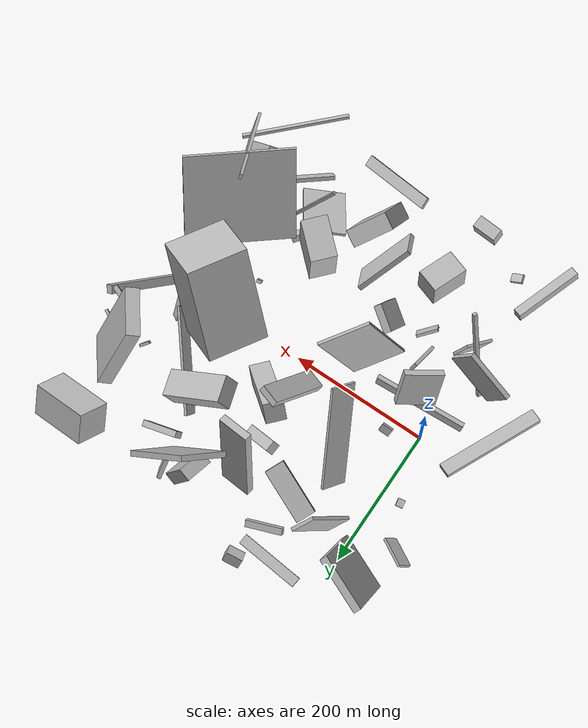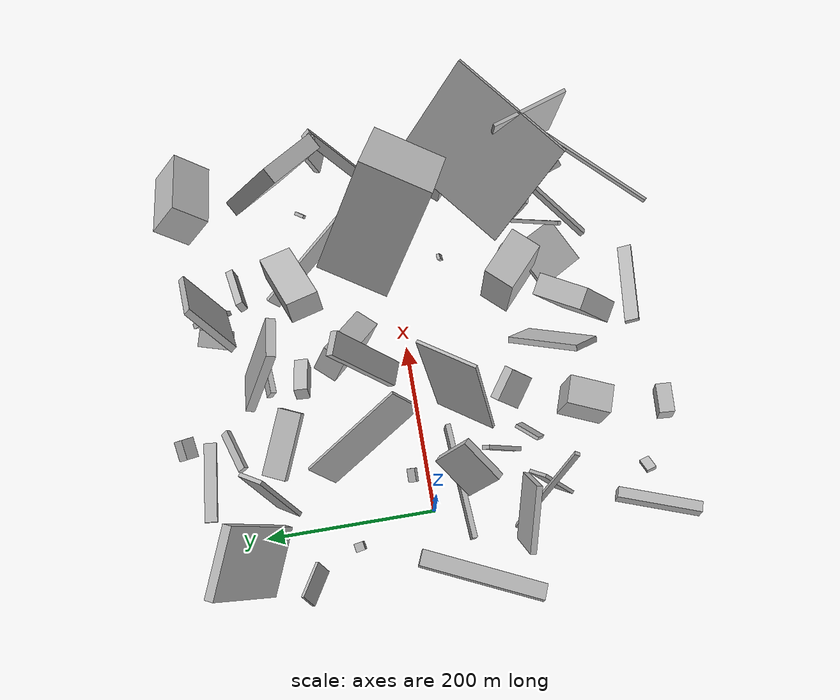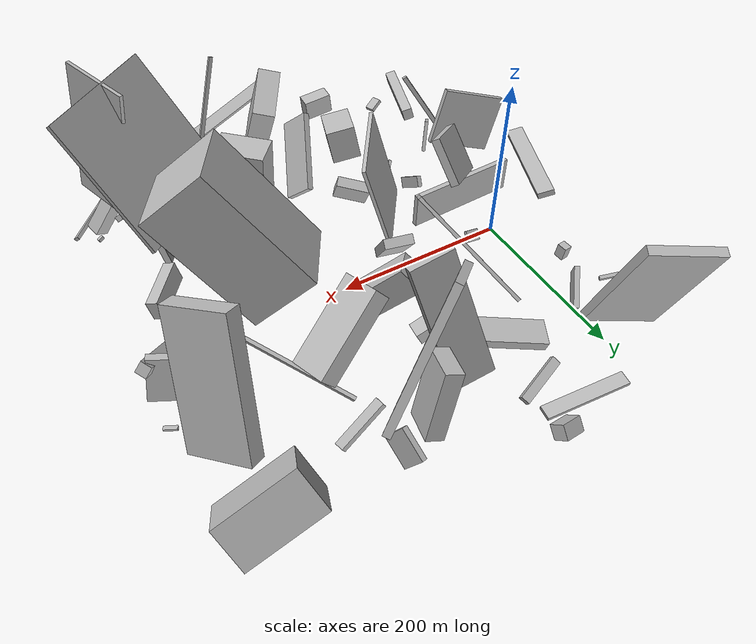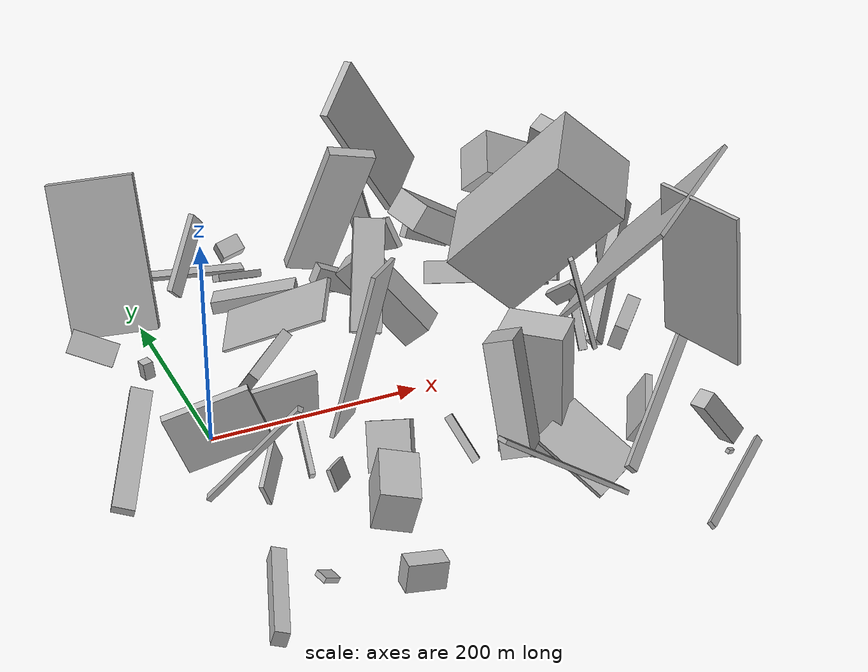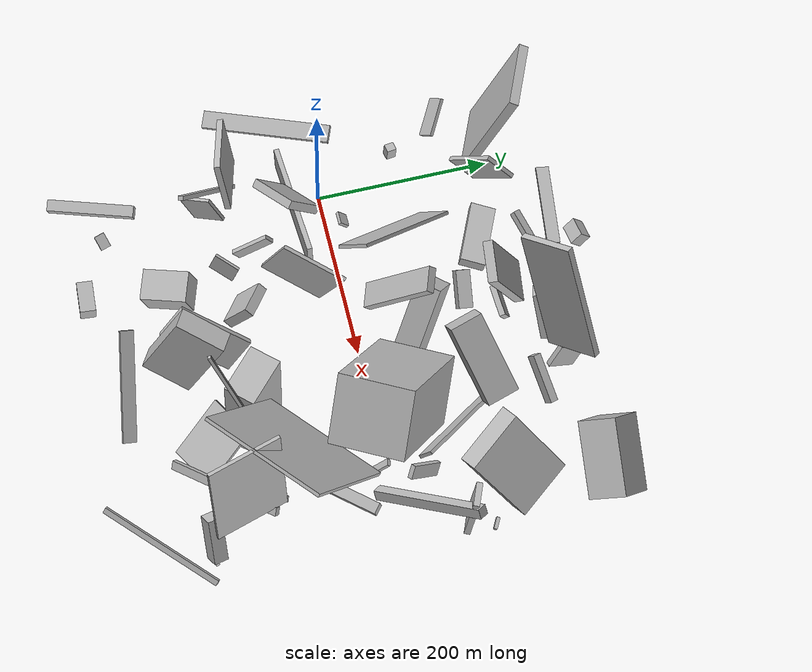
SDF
<sdf version="1.6">
 <world name="default">
  <scene>
   <sky><clouds><speed>12</speed></clouds></sky>
   <ambient>0.4 0.4 0.4 1</ambient>
   <background>0.7 0.7 0.7 1</background>
   <shadows>1</shadows>
  </scene>
  <gravity>0 0 -9.8066</gravity>
  <magnetic_field>6e-06 2.3e-05 -4.2e-05</magnetic_field>
  <physics default="0" name="default_physics" type="ode">
   <ode>
    <solver>
     <type>quick</type>
     <iters>10</iters>
     <sor>1.0</sor>
     <use_dynamic_moi_rescaling>0</use_dynamic_moi_rescaling>
    </solver>
    <constraints>
     <cfm>0</cfm>
     <erp>0.2</erp>
     <contact_max_correcting_vel>100</contact_max_correcting_vel>
     <contact_surface_layer>0.001</contact_surface_layer>
    </constraints>
   </ode>
   <max_step_size>0.004</max_step_size>
   <real_time_factor>1</real_time_factor>
   <real_time_update_rate>250</real_time_update_rate>
  </physics>
  <light name="sun" type="directional">
   <pose>0 0 10 0 0 0</pose>
   <diffuse>0.8 0.8 0.8 1</diffuse>
   <specular>0.2 0.2 0.2 1</specular>
   <attenuation>
    <range>1000</range>
    <constant>0.9</constant>
    <linear>0.01</linear>
    <quadratic>0.001</quadratic>
   </attenuation>
   <direction>-0.5 0.1 -0.9</direction>
  </light>
  <model name="building_1">
   <static>0</static>
   <pose>339.86130923326294 -70.73226031024792 126.59049041738119 0.6765411723229336 -0.08078631151106672 0.6871576022229129</pose>
   <link name="link">
    <gravity>0</gravity>
    <pose>0 0 75.0 0 0 0</pose>
    <collision name="collision"><geometry><box><size>150 4 150</size></box></geometry></collision>
    <visual name="visual">
     <cast_shadows>0</cast_shadows>
     <geometry><box><size>150 4 150</size></box></geometry>
     <material>
      <script>
       <uri>model://HANNAS_wall/materials/scripts</uri>
       <uri>model://HANNAS_wall/materials/textures</uri>
       <name>vrc/HANNAS_wall</name>
      </script>
     </material>
    </visual>
   </link>
  </model>
  <model name="building_2">
   <static>0</static>
   <pose>234.41859504238025 -112.451092709766 69.30256825156906 1.5479196373536226 -0.008549392369245516 0.8265571010301498</pose>
   <link name="link">
    <gravity>0</gravity>
    <pose>0 0 29.0 0 0 0</pose>
    <collision name="collision"><geometry><box><size>37 127 58</size></box></geometry></collision>
    <visual name="visual">
     <cast_shadows>0</cast_shadows>
     <geometry><box><size>37 127 58</size></box></geometry>
     <material>
      <script>
       <uri>model://HANNAS_wall/materials/scripts</uri>
       <uri>model://HANNAS_wall/materials/textures</uri>
       <name>vrc/HANNAS_wall</name>
      </script>
     </material>
    </visual>
   </link>
  </model>
  <model name="building_3">
   <static>0</static>
   <pose>76.4840911632873 261.4958240079526 14.284186949892971 -1.4681668726946042 -0.07457759659574865 3.03244069008466</pose>
   <link name="link">
    <gravity>0</gravity>
    <pose>0 0 7.5 0 0 0</pose>
    <collision name="collision"><geometry><box><size>94 4 15</size></box></geometry></collision>
    <visual name="visual">
     <cast_shadows>0</cast_shadows>
     <geometry><box><size>94 4 15</size></box></geometry>
     <material>
      <script>
       <uri>model://HANNAS_wall/materials/scripts</uri>
       <uri>model://HANNAS_wall/materials/textures</uri>
       <name>vrc/HANNAS_wall</name>
      </script>
     </material>
    </visual>
   </link>
  </model>
  <model name="building_4">
   <static>0</static>
   <pose>-5.812207834240176 -130.40043181064368 68.06803255269435 -1.0939551790798707 -0.9180362957567477 -0.8556923740887222</pose>
   <link name="link">
    <gravity>0</gravity>
    <pose>0 0 3.0 0 0 0</pose>
    <collision name="collision"><geometry><box><size>150 5 6</size></box></geometry></collision>
    <visual name="visual">
     <cast_shadows>0</cast_shadows>
     <geometry><box><size>150 5 6</size></box></geometry>
     <material>
      <script>
       <uri>model://HANNAS_wall/materials/scripts</uri>
       <uri>model://HANNAS_wall/materials/textures</uri>
       <name>vrc/HANNAS_wall</name>
      </script>
     </material>
    </visual>
   </link>
  </model>
  <model name="building_5">
   <static>0</static>
   <pose>297.28188567412104 -232.544727589148 34.4846061457941 1.0664196144154054 0.6877024292459486 1.990920021190257</pose>
   <link name="link">
    <gravity>0</gravity>
    <pose>0 0 75.0 0 0 0</pose>
    <collision name="collision"><geometry><box><size>6 10 150</size></box></geometry></collision>
    <visual name="visual">
     <cast_shadows>0</cast_shadows>
     <geometry><box><size>6 10 150</size></box></geometry>
     <material>
      <script>
       <uri>model://HANNAS_wall/materials/scripts</uri>
       <uri>model://HANNAS_wall/materials/textures</uri>
       <name>vrc/HANNAS_wall</name>
      </script>
     </material>
    </visual>
   </link>
  </model>
  <model name="building_6">
   <static>0</static>
   <pose>109.77845495143274 175.27779935029466 30.313809390059742 -0.8693691520981552 -1.313642380829562 2.0139662832845953</pose>
   <link name="link">
    <gravity>0</gravity>
    <pose>0 0 14.5 0 0 0</pose>
    <collision name="collision"><geometry><box><size>12 81 29</size></box></geometry></collision>
    <visual name="visual">
     <cast_shadows>0</cast_shadows>
     <geometry><box><size>12 81 29</size></box></geometry>
     <material>
      <script>
       <uri>model://HANNAS_wall/materials/scripts</uri>
       <uri>model://HANNAS_wall/materials/textures</uri>
       <name>vrc/HANNAS_wall</name>
      </script>
     </material>
    </visual>
   </link>
  </model>
  <model name="building_7">
   <static>0</static>
   <pose>410.5582461105599 33.88654066229163 55.69297985232673 1.1249666318822658 -0.5955034632584367 0.887518345935646</pose>
   <link name="link">
    <gravity>0</gravity>
    <pose>0 0 6.0 0 0 0</pose>
    <collision name="collision"><geometry><box><size>150 12 12</size></box></geometry></collision>
    <visual name="visual">
     <cast_shadows>0</cast_shadows>
     <geometry><box><size>150 12 12</size></box></geometry>
     <material>
      <script>
       <uri>model://HANNAS_wall/materials/scripts</uri>
       <uri>model://HANNAS_wall/materials/textures</uri>
       <name>vrc/HANNAS_wall</name>
      </script>
     </material>
    </visual>
   </link>
  </model>
  <model name="building_8">
   <static>0</static>
   <pose>397.97910832036365 -215.37950285836138 47.45797652923156 1.831627396983954 0.5644257457151296 -2.7167824795879345</pose>
   <link name="link">
    <gravity>0</gravity>
    <pose>0 0 8.5 0 0 0</pose>
    <collision name="collision"><geometry><box><size>17 56 17</size></box></geometry></collision>
    <visual name="visual">
     <cast_shadows>0</cast_shadows>
     <geometry><box><size>17 56 17</size></box></geometry>
     <material>
      <script>
       <uri>model://HANNAS_wall/materials/scripts</uri>
       <uri>model://HANNAS_wall/materials/textures</uri>
       <name>vrc/HANNAS_wall</name>
      </script>
     </material>
    </visual>
   </link>
  </model>
  <model name="building_9">
   <static>0</static>
   <pose>206.97321062750348 167.1519907402112 98.99002812625012 0.83478413413162 -1.20167275607702 -0.9712267116479445</pose>
   <link name="link">
    <gravity>0</gravity>
    <pose>0 0 23.0 0 0 0</pose>
    <collision name="collision"><geometry><box><size>150 11 46</size></box></geometry></collision>
    <visual name="visual">
     <cast_shadows>0</cast_shadows>
     <geometry><box><size>150 11 46</size></box></geometry>
     <material>
      <script>
       <uri>model://HANNAS_wall/materials/scripts</uri>
       <uri>model://HANNAS_wall/materials/textures</uri>
       <name>vrc/HANNAS_wall</name>
      </script>
     </material>
    </visual>
   </link>
  </model>
  <model name="building_10">
   <static>0</static>
   <pose>284.5109612112393 -145.17907531895702 16.858765897808397 0.09441340133428386 -0.5861086840236807 2.4258360970409236</pose>
   <link name="link">
    <gravity>0</gravity>
    <pose>0 0 5.5 0 0 0</pose>
    <collision name="collision"><geometry><box><size>10 39 11</size></box></geometry></collision>
    <visual name="visual">
     <cast_shadows>0</cast_shadows>
     <geometry><box><size>10 39 11</size></box></geometry>
     <material>
      <script>
       <uri>model://HANNAS_wall/materials/scripts</uri>
       <uri>model://HANNAS_wall/materials/textures</uri>
       <name>vrc/HANNAS_wall</name>
      </script>
     </material>
    </visual>
   </link>
  </model>
  <model name="building_11">
   <static>0</static>
   <pose>383.99386273820494 -45.13315656865539 54.58112302001949 -3.061553927093882 1.3028510600209162 2.5179331612249536</pose>
   <link name="link">
    <gravity>0</gravity>
    <pose>0 0 6.5 0 0 0</pose>
    <collision name="collision"><geometry><box><size>23 58 13</size></box></geometry></collision>
    <visual name="visual">
     <cast_shadows>0</cast_shadows>
     <geometry><box><size>23 58 13</size></box></geometry>
     <material>
      <script>
       <uri>model://HANNAS_wall/materials/scripts</uri>
       <uri>model://HANNAS_wall/materials/textures</uri>
       <name>vrc/HANNAS_wall</name>
      </script>
     </material>
    </visual>
   </link>
  </model>
  <model name="building_12">
   <static>0</static>
   <pose>92.28557731028188 -189.9819286759495 27.788693864163285 0.17050534359768274 0.1973452728671547 -0.3394909540452729</pose>
   <link name="link">
    <gravity>0</gravity>
    <pose>0 0 20.5 0 0 0</pose>
    <collision name="collision"><geometry><box><size>35 53 41</size></box></geometry></collision>
    <visual name="visual">
     <cast_shadows>0</cast_shadows>
     <geometry><box><size>35 53 41</size></box></geometry>
     <material>
      <script>
       <uri>model://HANNAS_wall/materials/scripts</uri>
       <uri>model://HANNAS_wall/materials/textures</uri>
       <name>vrc/HANNAS_wall</name>
      </script>
     </material>
    </visual>
   </link>
  </model>
  <model name="building_13">
   <static>0</static>
   <pose>282.9151900455412 225.10713059334165 83.30166139798085 0.4940307879944047 -0.22365496567496967 -0.9234711015515967</pose>
   <link name="link">
    <gravity>0</gravity>
    <pose>0 0 75.0 0 0 0</pose>
    <collision name="collision"><geometry><box><size>8 65 150</size></box></geometry></collision>
    <visual name="visual">
     <cast_shadows>0</cast_shadows>
     <geometry><box><size>8 65 150</size></box></geometry>
     <material>
      <script>
       <uri>model://HANNAS_wall/materials/scripts</uri>
       <uri>model://HANNAS_wall/materials/textures</uri>
       <name>vrc/HANNAS_wall</name>
      </script>
     </material>
    </visual>
   </link>
  </model>
  <model name="building_14">
   <static>0</static>
   <pose>-17.883238607599495 -212.1111090340059 28.90943692532174 1.6243913921986304 0.26910945692849636 -0.32425276939632103</pose>
   <link name="link">
    <gravity>0</gravity>
    <pose>0 0 50.0 0 0 0</pose>
    <collision name="collision"><geometry><box><size>13 15 100</size></box></geometry></collision>
    <visual name="visual">
     <cast_shadows>0</cast_shadows>
     <geometry><box><size>13 15 100</size></box></geometry>
     <material>
      <script>
       <uri>model://HANNAS_wall/materials/scripts</uri>
       <uri>model://HANNAS_wall/materials/textures</uri>
       <name>vrc/HANNAS_wall</name>
      </script>
     </material>
    </visual>
   </link>
  </model>
  <model name="building_15">
   <static>0</static>
   <pose>24.963764104233945 -33.72555808916522 23.832565576896993 -0.025825857664264762 -0.020148476217924646 1.6356282344982325</pose>
   <link name="link">
    <gravity>0</gravity>
    <pose>0 0 20.5 0 0 0</pose>
    <collision name="collision"><geometry><box><size>6 133 41</size></box></geometry></collision>
    <visual name="visual">
     <cast_shadows>0</cast_shadows>
     <geometry><box><size>6 133 41</size></box></geometry>
     <material>
      <script>
       <uri>model://HANNAS_wall/materials/scripts</uri>
       <uri>model://HANNAS_wall/materials/textures</uri>
       <name>vrc/HANNAS_wall</name>
      </script>
     </material>
    </visual>
   </link>
  </model>
  <model name="building_16">
   <static>0</static>
   <pose>81.1708194095105 53.87589189926357 56.13854194185666 -0.7595173417237551 -0.5937111363308472 -1.0873524583290624</pose>
   <link name="link">
    <gravity>0</gravity>
    <pose>0 0 20.5 0 0 0</pose>
    <collision name="collision"><geometry><box><size>150 4 41</size></box></geometry></collision>
    <visual name="visual">
     <cast_shadows>0</cast_shadows>
     <geometry><box><size>150 4 41</size></box></geometry>
     <material>
      <script>
       <uri>model://HANNAS_wall/materials/scripts</uri>
       <uri>model://HANNAS_wall/materials/textures</uri>
       <name>vrc/HANNAS_wall</name>
      </script>
     </material>
    </visual>
   </link>
  </model>
  <model name="building_17">
   <static>0</static>
   <pose>193.6946383825362 78.340229408499 50.92193594291075 0.7897261175229492 -0.042061167423893965 0.8399510238379528</pose>
   <link name="link">
    <gravity>0</gravity>
    <pose>0 0 16.0 0 0 0</pose>
    <collision name="collision"><geometry><box><size>29 96 32</size></box></geometry></collision>
    <visual name="visual">
     <cast_shadows>0</cast_shadows>
     <geometry><box><size>29 96 32</size></box></geometry>
     <material>
      <script>
       <uri>model://HANNAS_wall/materials/scripts</uri>
       <uri>model://HANNAS_wall/materials/textures</uri>
       <name>vrc/HANNAS_wall</name>
      </script>
     </material>
    </visual>
   </link>
  </model>
  <model name="building_18">
   <static>0</static>
   <pose>401.7280195207664 218.49608505691964 50.75873268105732 0.9003004491110097 -0.45443643516638205 3.0726210684159336</pose>
   <link name="link">
    <gravity>0</gravity>
    <pose>0 0 23.5 0 0 0</pose>
    <collision name="collision"><geometry><box><size>87 47 47</size></box></geometry></collision>
    <visual name="visual">
     <cast_shadows>0</cast_shadows>
     <geometry><box><size>87 47 47</size></box></geometry>
     <material>
      <script>
       <uri>model://HANNAS_wall/materials/scripts</uri>
       <uri>model://HANNAS_wall/materials/textures</uri>
       <name>vrc/HANNAS_wall</name>
      </script>
     </material>
    </visual>
   </link>
  </model>
  <model name="building_19">
   <static>0</static>
   <pose>200.6056356913937 -215.4078577935327 71.90779917449845 0.23807623873939754 -0.38080962039261657 -2.1749396382020505</pose>
   <link name="link">
    <gravity>0</gravity>
    <pose>0 0 49.0 0 0 0</pose>
    <collision name="collision"><geometry><box><size>59 25 98</size></box></geometry></collision>
    <visual name="visual">
     <cast_shadows>0</cast_shadows>
     <geometry><box><size>59 25 98</size></box></geometry>
     <material>
      <script>
       <uri>model://HANNAS_wall/materials/scripts</uri>
       <uri>model://HANNAS_wall/materials/textures</uri>
       <name>vrc/HANNAS_wall</name>
      </script>
     </material>
    </visual>
   </link>
  </model>
  <model name="building_20">
   <static>0</static>
   <pose>130.02314628764583 -47.82177235252597 91.96154010988182 1.3822793039167556 -0.2995070757477493 -2.212846660861953</pose>
   <link name="link">
    <gravity>0</gravity>
    <pose>0 0 2.0 0 0 0</pose>
    <collision name="collision"><geometry><box><size>76 150 4</size></box></geometry></collision>
    <visual name="visual">
     <cast_shadows>0</cast_shadows>
     <geometry><box><size>76 150 4</size></box></geometry>
     <material>
      <script>
       <uri>model://HANNAS_wall/materials/scripts</uri>
       <uri>model://HANNAS_wall/materials/textures</uri>
       <name>vrc/HANNAS_wall</name>
      </script>
     </material>
    </visual>
   </link>
  </model>
  <model name="building_21">
   <static>0</static>
   <pose>222.54721666511008 219.6455757492591 75.61270501024052 -0.6442200722977719 -1.2739701049037166 -2.7710561108982086</pose>
   <link name="link">
    <gravity>0</gravity>
    <pose>0 0 9.5 0 0 0</pose>
    <collision name="collision"><geometry><box><size>77 39 19</size></box></geometry></collision>
    <visual name="visual">
     <cast_shadows>0</cast_shadows>
     <geometry><box><size>77 39 19</size></box></geometry>
     <material>
      <script>
       <uri>model://HANNAS_wall/materials/scripts</uri>
       <uri>model://HANNAS_wall/materials/textures</uri>
       <name>vrc/HANNAS_wall</name>
      </script>
     </material>
    </visual>
   </link>
  </model>
  <model name="building_22">
   <static>0</static>
   <pose>-14.706366862626165 -99.72974362466627 54.16289126896349 0.17395288176277074 -0.32609792857897857 -0.25377852226137293</pose>
   <link name="link">
    <gravity>0</gravity>
    <pose>0 0 33.5 0 0 0</pose>
    <collision name="collision"><geometry><box><size>77 7 67</size></box></geometry></collision>
    <visual name="visual">
     <cast_shadows>0</cast_shadows>
     <geometry><box><size>77 7 67</size></box></geometry>
     <material>
      <script>
       <uri>model://HANNAS_wall/materials/scripts</uri>
       <uri>model://HANNAS_wall/materials/textures</uri>
       <name>vrc/HANNAS_wall</name>
      </script>
     </material>
    </visual>
   </link>
  </model>
  <model name="building_23">
   <static>0</static>
   <pose>159.3505572771001 21.20746692532207 59.254204403768924 -0.14541549751763488 -0.7161936629361179 -1.8106134258730253</pose>
   <link name="link">
    <gravity>0</gravity>
    <pose>0 0 53.0 0 0 0</pose>
    <collision name="collision"><geometry><box><size>10 29 106</size></box></geometry></collision>
    <visual name="visual">
     <cast_shadows>0</cast_shadows>
     <geometry><box><size>10 29 106</size></box></geometry>
     <material>
      <script>
       <uri>model://HANNAS_wall/materials/scripts</uri>
       <uri>model://HANNAS_wall/materials/textures</uri>
       <name>vrc/HANNAS_wall</name>
      </script>
     </material>
    </visual>
   </link>
  </model>
  <model name="building_24">
   <static>0</static>
   <pose>321.4983533942212 94.22025682834189 44.996283764692826 1.048160201359098 -0.31130378899729866 -0.9159517692689735</pose>
   <link name="link">
    <gravity>0</gravity>
    <pose>0 0 2.0 0 0 0</pose>
    <collision name="collision"><geometry><box><size>150 22 4</size></box></geometry></collision>
    <visual name="visual">
     <cast_shadows>0</cast_shadows>
     <geometry><box><size>150 22 4</size></box></geometry>
     <material>
      <script>
       <uri>model://HANNAS_wall/materials/scripts</uri>
       <uri>model://HANNAS_wall/materials/textures</uri>
       <name>vrc/HANNAS_wall</name>
      </script>
     </material>
    </visual>
   </link>
  </model>
  <model name="building_25">
   <static>0</static>
   <pose>70.3357543695918 -124.81179109428996 24.019208310549903 0.4756913943484169 -1.0748034017076586 1.970386126914993</pose>
   <link name="link">
    <gravity>0</gravity>
    <pose>0 0 2.0 0 0 0</pose>
    <collision name="collision"><geometry><box><size>20 31 4</size></box></geometry></collision>
    <visual name="visual">
     <cast_shadows>0</cast_shadows>
     <geometry><box><size>20 31 4</size></box></geometry>
     <material>
      <script>
       <uri>model://HANNAS_wall/materials/scripts</uri>
       <uri>model://HANNAS_wall/materials/textures</uri>
       <name>vrc/HANNAS_wall</name>
      </script>
     </material>
    </visual>
   </link>
  </model>
  <model name="building_26">
   <static>0</static>
   <pose>439.49937996840043 67.12840662855703 38.159681206865635 0.12021846639504233 -0.09893182695947812 -1.9648107507099777</pose>
   <link name="link">
    <gravity>0</gravity>
    <pose>0 0 34.5 0 0 0</pose>
    <collision name="collision"><geometry><box><size>7 29 69</size></box></geometry></collision>
    <visual name="visual">
     <cast_shadows>0</cast_shadows>
     <geometry><box><size>7 29 69</size></box></geometry>
     <material>
      <script>
       <uri>model://HANNAS_wall/materials/scripts</uri>
       <uri>model://HANNAS_wall/materials/textures</uri>
       <name>vrc/HANNAS_wall</name>
      </script>
     </material>
    </visual>
   </link>
  </model>
  <model name="building_27">
   <static>0</static>
   <pose>43.53997978223043 20.14857576644839 26.106867901396562 -2.928996641286107 -0.7974983430646899 -1.7338553938316963</pose>
   <link name="link">
    <gravity>0</gravity>
    <pose>0 0 2.0 0 0 0</pose>
    <collision name="collision"><geometry><box><size>13 16 4</size></box></geometry></collision>
    <visual name="visual">
     <cast_shadows>0</cast_shadows>
     <geometry><box><size>13 16 4</size></box></geometry>
     <material>
      <script>
       <uri>model://HANNAS_wall/materials/scripts</uri>
       <uri>model://HANNAS_wall/materials/textures</uri>
       <name>vrc/HANNAS_wall</name>
      </script>
     </material>
    </visual>
   </link>
  </model>
  <model name="building_28">
   <static>0</static>
   <pose>267.1666211741832 -275.08696279412356 50.359958785880906 -0.9682976208056038 0.32981521923256263 1.5820450758822686</pose>
   <link name="link">
    <gravity>0</gravity>
    <pose>0 0 62.5 0 0 0</pose>
    <collision name="collision"><geometry><box><size>16 4 125</size></box></geometry></collision>
    <visual name="visual">
     <cast_shadows>0</cast_shadows>
     <geometry><box><size>16 4 125</size></box></geometry>
     <material>
      <script>
       <uri>model://HANNAS_wall/materials/scripts</uri>
       <uri>model://HANNAS_wall/materials/textures</uri>
       <name>vrc/HANNAS_wall</name>
      </script>
     </material>
    </visual>
   </link>
  </model>
  <model name="building_29">
   <static>0</static>
   <pose>398.3400695105597 119.03034733268238 101.17606869141717 1.2502236766147596 -0.2749185573992838 2.1977803087211965</pose>
   <link name="link">
    <gravity>0</gravity>
    <pose>0 0 10.0 0 0 0</pose>
    <collision name="collision"><geometry><box><size>71 150 20</size></box></geometry></collision>
    <visual name="visual">
     <cast_shadows>0</cast_shadows>
     <geometry><box><size>71 150 20</size></box></geometry>
     <material>
      <script>
       <uri>model://HANNAS_wall/materials/scripts</uri>
       <uri>model://HANNAS_wall/materials/textures</uri>
       <name>vrc/HANNAS_wall</name>
      </script>
     </material>
    </visual>
   </link>
  </model>
  <model name="building_30">
   <static>0</static>
   <pose>-29.99760377332157 208.91326890130154 81.53121967874465 2.7142199037944676 -1.213665003191193 1.573802497343558</pose>
   <link name="link">
    <gravity>0</gravity>
    <pose>0 0 5.5 0 0 0</pose>
    <collision name="collision"><geometry><box><size>150 83 11</size></box></geometry></collision>
    <visual name="visual">
     <cast_shadows>0</cast_shadows>
     <geometry><box><size>150 83 11</size></box></geometry>
     <material>
      <script>
       <uri>model://HANNAS_wall/materials/scripts</uri>
       <uri>model://HANNAS_wall/materials/textures</uri>
       <name>vrc/HANNAS_wall</name>
      </script>
     </material>
    </visual>
   </link>
  </model>
  <model name="building_31">
   <static>0</static>
   <pose>436.27519252074353 -213.85421476458978 14.06728243751844 -1.4769966447717886 -0.7515743635803493 2.2700348707424545</pose>
   <link name="link">
    <gravity>0</gravity>
    <pose>0 0 75.0 0 0 0</pose>
    <collision name="collision"><geometry><box><size>7 4 150</size></box></geometry></collision>
    <visual name="visual">
     <cast_shadows>0</cast_shadows>
     <geometry><box><size>7 4 150</size></box></geometry>
     <material>
      <script>
       <uri>model://HANNAS_wall/materials/scripts</uri>
       <uri>model://HANNAS_wall/materials/textures</uri>
       <name>vrc/HANNAS_wall</name>
      </script>
     </material>
    </visual>
   </link>
  </model>
  <model name="building_32">
   <static>0</static>
   <pose>407.4047047149744 -210.87068392404814 7.300808707132435 -2.6629843867221377 -1.1768554889404625 -0.15876193701057478</pose>
   <link name="link">
    <gravity>0</gravity>
    <pose>0 0 3.5 0 0 0</pose>
    <collision name="collision"><geometry><box><size>4 4 7</size></box></geometry></collision>
    <visual name="visual">
     <cast_shadows>0</cast_shadows>
     <geometry><box><size>4 4 7</size></box></geometry>
     <material>
      <script>
       <uri>model://HANNAS_wall/materials/scripts</uri>
       <uri>model://HANNAS_wall/materials/textures</uri>
       <name>vrc/HANNAS_wall</name>
      </script>
     </material>
    </visual>
   </link>
  </model>
  <model name="building_33">
   <static>0</static>
   <pose>78.06227652844942 -287.3963180995995 21.85517915215452 0.12950858952900776 0.032033179695502234 1.4974572466694887</pose>
   <link name="link">
    <gravity>0</gravity>
    <pose>0 0 13.0 0 0 0</pose>
    <collision name="collision"><geometry><box><size>18 35 26</size></box></geometry></collision>
    <visual name="visual">
     <cast_shadows>0</cast_shadows>
     <geometry><box><size>18 35 26</size></box></geometry>
     <material>
      <script>
       <uri>model://HANNAS_wall/materials/scripts</uri>
       <uri>model://HANNAS_wall/materials/textures</uri>
       <name>vrc/HANNAS_wall</name>
      </script>
     </material>
    </visual>
   </link>
  </model>
  <model name="building_34">
   <static>0</static>
   <pose>59.12831383542034 -89.89434399284015 32.28214971544257 1.6702559282618805 0.672912992994308 -1.688903909924168</pose>
   <link name="link">
    <gravity>0</gravity>
    <pose>0 0 2.5 0 0 0</pose>
    <collision name="collision"><geometry><box><size>50 13 5</size></box></geometry></collision>
    <visual name="visual">
     <cast_shadows>0</cast_shadows>
     <geometry><box><size>50 13 5</size></box></geometry>
     <material>
      <script>
       <uri>model://HANNAS_wall/materials/scripts</uri>
       <uri>model://HANNAS_wall/materials/textures</uri>
       <name>vrc/HANNAS_wall</name>
      </script>
     </material>
    </visual>
   </link>
  </model>
  <model name="building_35">
   <static>0</static>
   <pose>263.9178393863961 223.6018943634766 29.01025456453421 1.2856578565338739 -0.9971996422526732 2.0349874897420954</pose>
   <link name="link">
    <gravity>0</gravity>
    <pose>0 0 3.0 0 0 0</pose>
    <collision name="collision"><geometry><box><size>32 35 6</size></box></geometry></collision>
    <visual name="visual">
     <cast_shadows>0</cast_shadows>
     <geometry><box><size>32 35 6</size></box></geometry>
     <material>
      <script>
       <uri>model://HANNAS_wall/materials/scripts</uri>
       <uri>model://HANNAS_wall/materials/textures</uri>
       <name>vrc/HANNAS_wall</name>
      </script>
     </material>
    </visual>
   </link>
  </model>
  <model name="building_36">
   <static>0</static>
   <pose>318.43813647871525 193.85997096171306 28.654833756120798 -0.3777445415079883 -1.0485500156527598 0.6134688146601199</pose>
   <link name="link">
    <gravity>0</gravity>
    <pose>0 0 28.0 0 0 0</pose>
    <collision name="collision"><geometry><box><size>15 9 56</size></box></geometry></collision>
    <visual name="visual">
     <cast_shadows>0</cast_shadows>
     <geometry><box><size>15 9 56</size></box></geometry>
     <material>
      <script>
       <uri>model://HANNAS_wall/materials/scripts</uri>
       <uri>model://HANNAS_wall/materials/textures</uri>
       <name>vrc/HANNAS_wall</name>
      </script>
     </material>
    </visual>
   </link>
  </model>
  <model name="building_37">
   <static>0</static>
   <pose>191.98304688606305 124.89064834051243 44.53681014561688 0.2547147632139508 1.1141405738127363 -2.986437402479635</pose>
   <link name="link">
    <gravity>0</gravity>
    <pose>0 0 21.5 0 0 0</pose>
    <collision name="collision"><geometry><box><size>19 16 43</size></box></geometry></collision>
    <visual name="visual">
     <cast_shadows>0</cast_shadows>
     <geometry><box><size>19 16 43</size></box></geometry>
     <material>
      <script>
       <uri>model://HANNAS_wall/materials/scripts</uri>
       <uri>model://HANNAS_wall/materials/textures</uri>
       <name>vrc/HANNAS_wall</name>
      </script>
     </material>
    </visual>
   </link>
  </model>
  <model name="building_38">
   <static>0</static>
   <pose>401.4961920646186 -165.45415182955088 93.25570831160076 0.019739368867737143 0.09998919577258576 -2.833074176758402</pose>
   <link name="link">
    <gravity>0</gravity>
    <pose>0 0 75.0 0 0 0</pose>
    <collision name="collision"><geometry><box><size>4 86 150</size></box></geometry></collision>
    <visual name="visual">
     <cast_shadows>0</cast_shadows>
     <geometry><box><size>4 86 150</size></box></geometry>
     <material>
      <script>
       <uri>model://HANNAS_wall/materials/scripts</uri>
       <uri>model://HANNAS_wall/materials/textures</uri>
       <name>vrc/HANNAS_wall</name>
      </script>
     </material>
    </visual>
   </link>
  </model>
  <model name="building_39">
   <static>0</static>
   <pose>388.3445927656044 106.80866167067003 8.000926672677071 -0.8914469872030569 0.30772210933071625 2.603241500656893</pose>
   <link name="link">
    <gravity>0</gravity>
    <pose>0 0 8.5 0 0 0</pose>
    <collision name="collision"><geometry><box><size>4 4 17</size></box></geometry></collision>
    <visual name="visual">
     <cast_shadows>0</cast_shadows>
     <geometry><box><size>4 4 17</size></box></geometry>
     <material>
      <script>
       <uri>model://HANNAS_wall/materials/scripts</uri>
       <uri>model://HANNAS_wall/materials/textures</uri>
       <name>vrc/HANNAS_wall</name>
      </script>
     </material>
    </visual>
   </link>
  </model>
  <model name="building_40">
   <static>0</static>
   <pose>280.2987004280152 -183.59871880768216 28.72768279495133 -0.19897000202839105 -0.5041987287550292 2.1636898803212703</pose>
   <link name="link">
    <gravity>0</gravity>
    <pose>0 0 2.0 0 0 0</pose>
    <collision name="collision"><geometry><box><size>75 59 4</size></box></geometry></collision>
    <visual name="visual">
     <cast_shadows>0</cast_shadows>
     <geometry><box><size>75 59 4</size></box></geometry>
     <material>
      <script>
       <uri>model://HANNAS_wall/materials/scripts</uri>
       <uri>model://HANNAS_wall/materials/textures</uri>
       <name>vrc/HANNAS_wall</name>
      </script>
     </material>
    </visual>
   </link>
  </model>
  <model name="building_41">
   <static>0</static>
   <pose>350.2987787301316 -144.74721188767282 29.11814917461922 -2.3491682627118085 -1.0619944720289856 -1.208363918180744</pose>
   <link name="link">
    <gravity>0</gravity>
    <pose>0 0 3.5 0 0 0</pose>
    <collision name="collision"><geometry><box><size>40 47 7</size></box></geometry></collision>
    <visual name="visual">
     <cast_shadows>0</cast_shadows>
     <geometry><box><size>40 47 7</size></box></geometry>
     <material>
      <script>
       <uri>model://HANNAS_wall/materials/scripts</uri>
       <uri>model://HANNAS_wall/materials/textures</uri>
       <name>vrc/HANNAS_wall</name>
      </script>
     </material>
    </visual>
   </link>
  </model>
  <model name="building_42">
   <static>0</static>
   <pose>16.769535607373825 -252.14241204898042 24.504933882195196 1.0877451254884802 0.10414522223343255 -1.2832083889202037</pose>
   <link name="link">
    <gravity>0</gravity>
    <pose>0 0 8.5 0 0 0</pose>
    <collision name="collision"><geometry><box><size>12 5 17</size></box></geometry></collision>
    <visual name="visual">
     <cast_shadows>0</cast_shadows>
     <geometry><box><size>12 5 17</size></box></geometry>
     <material>
      <script>
       <uri>model://HANNAS_wall/materials/scripts</uri>
       <uri>model://HANNAS_wall/materials/textures</uri>
       <name>vrc/HANNAS_wall</name>
      </script>
     </material>
    </visual>
   </link>
  </model>
  <model name="building_43">
   <static>0</static>
   <pose>175.06473639408287 -182.43308812466194 47.102583303706425 0.6920394784957359 0.46457299066405494 3.0483223830937685</pose>
   <link name="link">
    <gravity>0</gravity>
    <pose>0 0 22.0 0 0 0</pose>
    <collision name="collision"><geometry><box><size>7 93 44</size></box></geometry></collision>
    <visual name="visual">
     <cast_shadows>0</cast_shadows>
     <geometry><box><size>7 93 44</size></box></geometry>
     <material>
      <script>
       <uri>model://HANNAS_wall/materials/scripts</uri>
       <uri>model://HANNAS_wall/materials/textures</uri>
       <name>vrc/HANNAS_wall</name>
      </script>
     </material>
    </visual>
   </link>
  </model>
  <model name="building_44">
   <static>0</static>
   <pose>355.29669225368036 -34.083856737989976 21.62445864513868 0.10492466541913724 -0.6731682638689943 -1.8586408984516625</pose>
   <link name="link">
    <gravity>0</gravity>
    <pose>0 0 24.5 0 0 0</pose>
    <collision name="collision"><geometry><box><size>4 8 49</size></box></geometry></collision>
    <visual name="visual">
     <cast_shadows>0</cast_shadows>
     <geometry><box><size>4 8 49</size></box></geometry>
     <material>
      <script>
       <uri>model://HANNAS_wall/materials/scripts</uri>
       <uri>model://HANNAS_wall/materials/textures</uri>
       <name>vrc/HANNAS_wall</name>
      </script>
     </material>
    </visual>
   </link>
  </model>
  <model name="building_45">
   <static>0</static>
   <pose>451.41794695367315 94.5290959388344 30.69175959553034 -1.5537869111199247 0.24408326407942024 1.0974202567424836</pose>
   <link name="link">
    <gravity>0</gravity>
    <pose>0 0 7.0 0 0 0</pose>
    <collision name="collision"><geometry><box><size>4 4 14</size></box></geometry></collision>
    <visual name="visual">
     <cast_shadows>0</cast_shadows>
     <geometry><box><size>4 4 14</size></box></geometry>
     <material>
      <script>
       <uri>model://HANNAS_wall/materials/scripts</uri>
       <uri>model://HANNAS_wall/materials/textures</uri>
       <name>vrc/HANNAS_wall</name>
      </script>
     </material>
    </visual>
   </link>
  </model>
  <model name="building_46">
   <static>0</static>
   <pose>129.44732715009164 -109.94886179217426 27.74955618546684 0.9991767290283244 -0.20323467915116428 -0.6179988463612379</pose>
   <link name="link">
    <gravity>0</gravity>
    <pose>0 0 6.0 0 0 0</pose>
    <collision name="collision"><geometry><box><size>40 45 12</size></box></geometry></collision>
    <visual name="visual">
     <cast_shadows>0</cast_shadows>
     <geometry><box><size>40 45 12</size></box></geometry>
     <material>
      <script>
       <uri>model://HANNAS_wall/materials/scripts</uri>
       <uri>model://HANNAS_wall/materials/textures</uri>
       <name>vrc/HANNAS_wall</name>
      </script>
     </material>
    </visual>
   </link>
  </model>
  <model name="building_47">
   <static>0</static>
   <pose>287.3072442175457 39.29968362273106 98.89091127566452 0.7129120858561127 -0.14418876401312875 1.0256663943019138</pose>
   <link name="link">
    <gravity>0</gravity>
    <pose>0 0 75.0 0 0 0</pose>
    <collision name="collision"><geometry><box><size>86 79 150</size></box></geometry></collision>
    <visual name="visual">
     <cast_shadows>0</cast_shadows>
     <geometry><box><size>86 79 150</size></box></geometry>
     <material>
      <script>
       <uri>model://HANNAS_wall/materials/scripts</uri>
       <uri>model://HANNAS_wall/materials/textures</uri>
       <name>vrc/HANNAS_wall</name>
      </script>
     </material>
    </visual>
   </link>
  </model>
  <model name="building_48">
   <static>0</static>
   <pose>299.31256525296715 -58.48155558760984 10.522032599942158 -1.6480879314259422 1.2084171824600722 -1.5185450152793714</pose>
   <link name="link">
    <gravity>0</gravity>
    <pose>0 0 3.5 0 0 0</pose>
    <collision name="collision"><geometry><box><size>10 4 7</size></box></geometry></collision>
    <visual name="visual">
     <cast_shadows>0</cast_shadows>
     <geometry><box><size>10 4 7</size></box></geometry>
     <material>
      <script>
       <uri>model://HANNAS_wall/materials/scripts</uri>
       <uri>model://HANNAS_wall/materials/textures</uri>
       <name>vrc/HANNAS_wall</name>
      </script>
     </material>
    </visual>
   </link>
  </model>
  <model name="building_49">
   <static>0</static>
   <pose>116.81144962918687 282.84894799752436 25.130970152837392 -2.862101141625344 -0.8282317754944323 -1.6447167027661307</pose>
   <link name="link">
    <gravity>0</gravity>
    <pose>0 0 8.5 0 0 0</pose>
    <collision name="collision"><geometry><box><size>16 24 17</size></box></geometry></collision>
    <visual name="visual">
     <cast_shadows>0</cast_shadows>
     <geometry><box><size>16 24 17</size></box></geometry>
     <material>
      <script>
       <uri>model://HANNAS_wall/materials/scripts</uri>
       <uri>model://HANNAS_wall/materials/textures</uri>
       <name>vrc/HANNAS_wall</name>
      </script>
     </material>
    </visual>
   </link>
  </model>
  <model name="building_50">
   <static>0</static>
   <pose>8.38868125396907 -137.93310567546956 53.39239031741529 1.6310169440717452 -1.0328198767729415 -2.275306332405765</pose>
   <link name="link">
    <gravity>0</gravity>
    <pose>0 0 2.0 0 0 0</pose>
    <collision name="collision"><geometry><box><size>36 43 4</size></box></geometry></collision>
    <visual name="visual">
     <cast_shadows>0</cast_shadows>
     <geometry><box><size>36 43 4</size></box></geometry>
     <material>
      <script>
       <uri>model://HANNAS_wall/materials/scripts</uri>
       <uri>model://HANNAS_wall/materials/textures</uri>
       <name>vrc/HANNAS_wall</name>
      </script>
     </material>
    </visual>
   </link>
  </model>
  <model name="building_51">
   <static>0</static>
   <pose>310.21239688722267 -136.000296072903 97.46427257533618 0.35084942796029256 -0.3311616960787296 -0.14940355368869565</pose>
   <link name="link">
    <gravity>0</gravity>
    <pose>0 0 70.0 0 0 0</pose>
    <collision name="collision"><geometry><box><size>4 4 140</size></box></geometry></collision>
    <visual name="visual">
     <cast_shadows>0</cast_shadows>
     <geometry><box><size>4 4 140</size></box></geometry>
     <material>
      <script>
       <uri>model://HANNAS_wall/materials/scripts</uri>
       <uri>model://HANNAS_wall/materials/textures</uri>
       <name>vrc/HANNAS_wall</name>
      </script>
     </material>
    </visual>
   </link>
  </model>
  <model name="building_52">
   <static>0</static>
   <pose>312.65894722724613 134.7971983082395 66.92737830944431 0.929322281775007 0.09183608981429621 -1.2907052442970128</pose>
   <link name="link">
    <gravity>0</gravity>
    <pose>0 0 48.5 0 0 0</pose>
    <collision name="collision"><geometry><box><size>38 27 97</size></box></geometry></collision>
    <visual name="visual">
     <cast_shadows>0</cast_shadows>
     <geometry><box><size>38 27 97</size></box></geometry>
     <material>
      <script>
       <uri>model://HANNAS_wall/materials/scripts</uri>
       <uri>model://HANNAS_wall/materials/textures</uri>
       <name>vrc/HANNAS_wall</name>
      </script>
     </material>
    </visual>
   </link>
  </model>
  <model name="building_53">
   <static>0</static>
   <pose>-53.524723326332385 25.86522985198266 50.55980854192663 -1.7050214197896862 -0.2630636498812171 2.7473842214918998</pose>
   <link name="link">
    <gravity>0</gravity>
    <pose>0 0 75.0 0 0 0</pose>
    <collision name="collision"><geometry><box><size>20 7 150</size></box></geometry></collision>
    <visual name="visual">
     <cast_shadows>0</cast_shadows>
     <geometry><box><size>20 7 150</size></box></geometry>
     <material>
      <script>
       <uri>model://HANNAS_wall/materials/scripts</uri>
       <uri>model://HANNAS_wall/materials/textures</uri>
       <name>vrc/HANNAS_wall</name>
      </script>
     </material>
    </visual>
   </link>
  </model>
  <model name="building_54">
   <static>0</static>
   <pose>-27.270973733752868 86.56187317370023 27.878923878400215 -1.6717495098696522 -0.07391634540983492 0.17283268899746818</pose>
   <link name="link">
    <gravity>0</gravity>
    <pose>0 0 5.5 0 0 0</pose>
    <collision name="collision"><geometry><box><size>10 16 11</size></box></geometry></collision>
    <visual name="visual">
     <cast_shadows>0</cast_shadows>
     <geometry><box><size>10 16 11</size></box></geometry>
     <material>
      <script>
       <uri>model://HANNAS_wall/materials/scripts</uri>
       <uri>model://HANNAS_wall/materials/textures</uri>
       <name>vrc/HANNAS_wall</name>
      </script>
     </material>
    </visual>
   </link>
  </model>
  <model name="building_55">
   <static>0</static>
   <pose>375.04537400189054 30.958269791736942 37.148002588980646 0.7783816781834921 0.38457106125050766 -2.5197526386913798</pose>
   <link name="link">
    <gravity>0</gravity>
    <pose>0 0 8.0 0 0 0</pose>
    <collision name="collision"><geometry><box><size>6 43 16</size></box></geometry></collision>
    <visual name="visual">
     <cast_shadows>0</cast_shadows>
     <geometry><box><size>6 43 16</size></box></geometry>
     <material>
      <script>
       <uri>model://HANNAS_wall/materials/scripts</uri>
       <uri>model://HANNAS_wall/materials/textures</uri>
       <name>vrc/HANNAS_wall</name>
      </script>
     </material>
    </visual>
   </link>
  </model>
  <model name="building_56">
   <static>0</static>
   <pose>36.93768632096918 -46.957740500939465 92.02940693350882 0.4670386065834052 -0.9234706622878694 -1.3263742990943295</pose>
   <link name="link">
    <gravity>0</gravity>
    <pose>0 0 5.0 0 0 0</pose>
    <collision name="collision"><geometry><box><size>57 56 10</size></box></geometry></collision>
    <visual name="visual">
     <cast_shadows>0</cast_shadows>
     <geometry><box><size>57 56 10</size></box></geometry>
     <material>
      <script>
       <uri>model://HANNAS_wall/materials/scripts</uri>
       <uri>model://HANNAS_wall/materials/textures</uri>
       <name>vrc/HANNAS_wall</name>
      </script>
     </material>
    </visual>
   </link>
  </model>
  <model name="building_57">
   <static>0</static>
   <pose>50.775680227270925 193.47813437309927 68.83738734559209 0.8589225476450163 0.12306156237502078 -0.683010585662008</pose>
   <link name="link">
    <gravity>0</gravity>
    <pose>0 0 20.0 0 0 0</pose>
    <collision name="collision"><geometry><box><size>5 75 40</size></box></geometry></collision>
    <visual name="visual">
     <cast_shadows>0</cast_shadows>
     <geometry><box><size>5 75 40</size></box></geometry>
     <material>
      <script>
       <uri>model://HANNAS_wall/materials/scripts</uri>
       <uri>model://HANNAS_wall/materials/textures</uri>
       <name>vrc/HANNAS_wall</name>
      </script>
     </material>
    </visual>
   </link>
  </model>
  <model name="building_58">
   <static>0</static>
   <pose>-60.96110719055616 151.38361446919018 22.52350025490917 -0.8919310201439442 -0.3094691084601927 2.614072005179352</pose>
   <link name="link">
    <gravity>0</gravity>
    <pose>0 0 2.0 0 0 0</pose>
    <collision name="collision"><geometry><box><size>45 23 4</size></box></geometry></collision>
    <visual name="visual">
     <cast_shadows>0</cast_shadows>
     <geometry><box><size>45 23 4</size></box></geometry>
     <material>
      <script>
       <uri>model://HANNAS_wall/materials/scripts</uri>
       <uri>model://HANNAS_wall/materials/textures</uri>
       <name>vrc/HANNAS_wall</name>
      </script>
     </material>
    </visual>
   </link>
  </model>
  <model name="building_59">
   <static>0</static>
   <pose>183.73156480286758 165.62316412027812 20.254131188268033 1.1613938277057256 -0.11507273225677947 -3.0720027851298313</pose>
   <link name="link">
    <gravity>0</gravity>
    <pose>0 0 3.5 0 0 0</pose>
    <collision name="collision"><geometry><box><size>37 17 7</size></box></geometry></collision>
    <visual name="visual">
     <cast_shadows>0</cast_shadows>
     <geometry><box><size>37 17 7</size></box></geometry>
     <material>
      <script>
       <uri>model://HANNAS_wall/materials/scripts</uri>
       <uri>model://HANNAS_wall/materials/textures</uri>
       <name>vrc/HANNAS_wall</name>
      </script>
     </material>
    </visual>
   </link>
  </model>
  <model name="building_60">
   <static>0</static>
   <pose>108.65905653008095 216.72463311400003 24.19923183283794 2.0971610999380443 -0.2894452057158366 -2.8233243832963693</pose>
   <link name="link">
    <gravity>0</gravity>
    <pose>0 0 5.0 0 0 0</pose>
    <collision name="collision"><geometry><box><size>54 7 10</size></box></geometry></collision>
    <visual name="visual">
     <cast_shadows>0</cast_shadows>
     <geometry><box><size>54 7 10</size></box></geometry>
     <material>
      <script>
       <uri>model://HANNAS_wall/materials/scripts</uri>
       <uri>model://HANNAS_wall/materials/textures</uri>
       <name>vrc/HANNAS_wall</name>
      </script>
     </material>
    </visual>
   </link>
  </model>
 </world>
</sdf>
